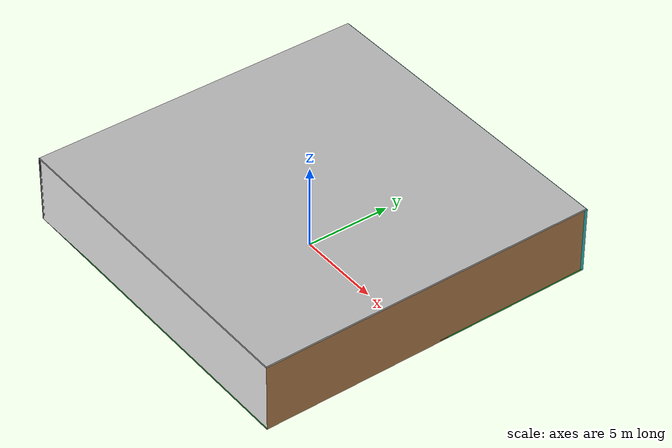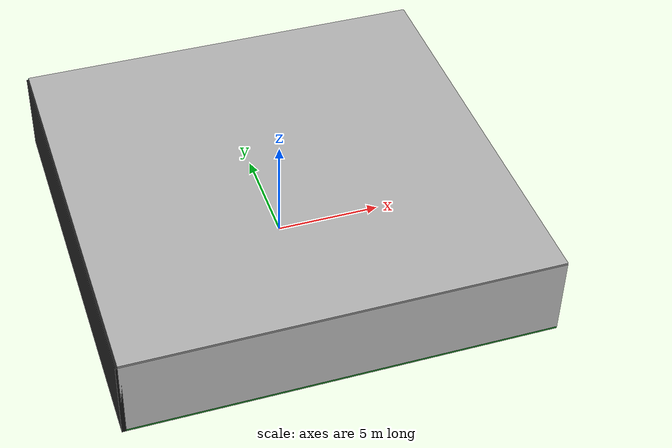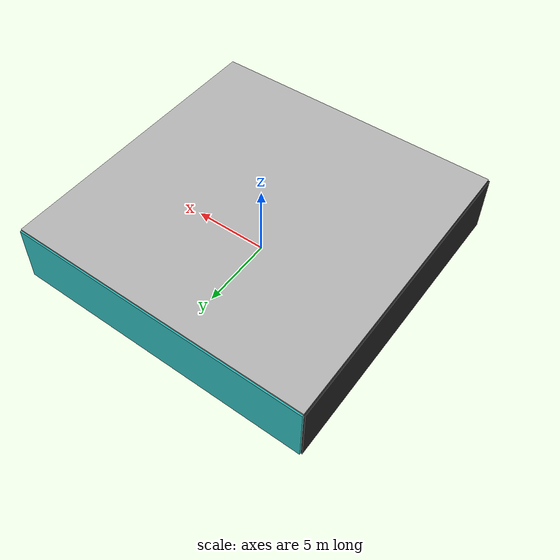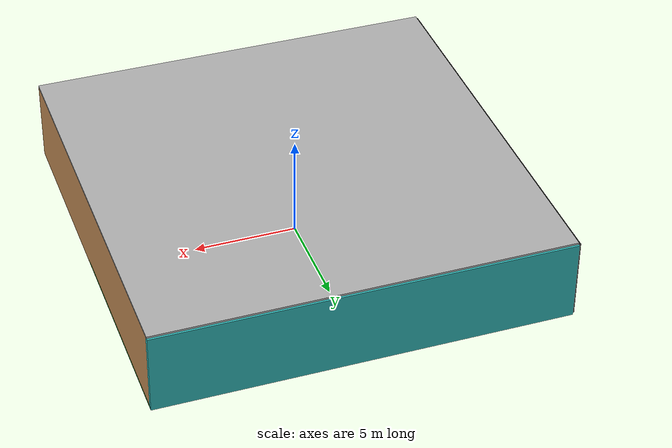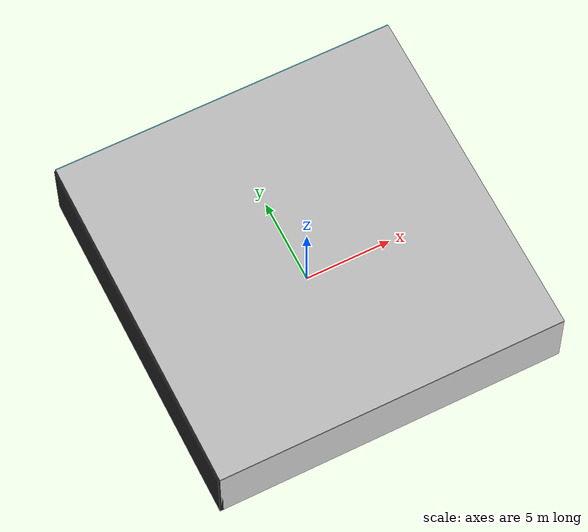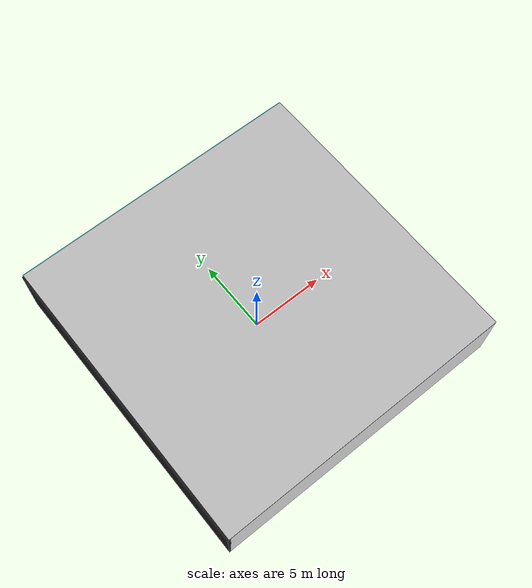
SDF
<sdf version="1.4">
 <world name="default">
  <physics type="ode">
   <max_step_size>0.001</max_step_size>
   <real_time_factor>1</real_time_factor>
   <real_time_update_rate>1000</real_time_update_rate>
   <gravity>0 0 -9.8</gravity>
  </physics>
  <scene><ambient>0.4 0.4 0.4 1</ambient><background>0.7 0.7 0.7 1</background><shadows>1</shadows></scene>
  <model name="Surrounding">
   <static>1</static>
   <link name="Ceiling">
    <collision name="Ceiling_Collision"><geometry><box><size>20 20 0.1</size></box></geometry></collision>
    <visual name="Ceiling_Visual">
     <geometry><box><size>20 20 0.1</size></box></geometry>
     <material>
      <script><uri>file://media/materials/scripts/gazebo.material</uri><name>Gazebo/LightOn</name></script>
     </material>
    </visual>
    <pose>0 0 4.05 0 0 0</pose>
   </link>
   <link name="Wall_South">
    <collision name="Wall_South_Collision">
     <geometry><box><size>20 0 4</size></box></geometry>
     <pose>0 0 2 0 -0 0</pose>
    </collision>
    <visual name="Wall_South_Visual">
     <pose>0 0 2 0 -0 0</pose>
     <geometry><box><size>20 0 4</size></box></geometry>
     <material>
      <script><uri>file://media/materials/scripts/gazebo.material</uri><name>Gazebo/WhiteGlow</name></script>
     </material>
    </visual>
    <velocity_decay><linear>0</linear><angular>0</angular></velocity_decay>
    <pose>0 -10 0 0 -0 0</pose>
   </link>
   <link name="Wall_East">
    <collision name="Wall_21_Collision">
     <geometry><box><size>20 0 4</size></box></geometry>
     <pose>0 0 2 0 -0 0</pose>
    </collision>
    <visual name="Wall_21_Visual">
     <pose>0 0 2 0 -0 0</pose>
     <geometry><box><size>20 0 4</size></box></geometry>
     <material>
      <script><uri>file://media/materials/scripts/gazebo.material</uri><name>Gazebo/Wood</name></script>
     </material>
    </visual>
    <velocity_decay><linear>0</linear><angular>0</angular></velocity_decay>
    <pose>10 0 0 0 -0 1.5708</pose>
   </link>
   <link name="Wall_North">
    <collision name="Wall_22_Collision">
     <geometry><box><size>20 0.2 4</size></box></geometry>
     <pose>0 0 2 0 -0 0</pose>
    </collision>
    <visual name="Wall_22_Visual">
     <pose>0 0 2 0 -0 0</pose>
     <geometry><box><size>20 0.2 4</size></box></geometry>
     <material>
      <script><uri>file://media/materials/scripts/gazebo.material</uri><name>Gazebo/TurquoiseGlow</name></script>
     </material>
    </visual>
    <velocity_decay><linear>0</linear><angular>0</angular></velocity_decay>
    <pose>0 10 0 0 -0 0</pose>
   </link>
   <link name="Wall_West">
    <collision name="Wall_23_Collision">
     <geometry><box><size>20 0.2 4</size></box></geometry>
     <pose>0 0 2 0 -0 0</pose>
    </collision>
    <visual name="Wall_23_Visual">
     <pose>0 0 2 0 -0 0</pose>
     <geometry><box><size>20 0.2 4</size></box></geometry>
     <material>
      <script><uri>file://media/materials/scripts/gazebo.material</uri><name>Gazebo/FlatBlack</name></script>
     </material>
    </visual>
    <velocity_decay><linear>0</linear><angular>0</angular></velocity_decay>
    <pose>-10 0 0 0 0 -1.5708</pose>
   </link>
   <link name="Ground_link">
    <collision name="collision">
     <pose>0 0 .05 0 -0 0</pose>
     <geometry><box><size>20 20 0.1</size></box></geometry>
    </collision>
    <visual name="visual">
     <pose>0 0 .05 0 -0 0</pose>
     <geometry><box><size>20 20 0.1</size></box></geometry>
     <material>
      <script><uri>file://media/materials/scripts/gazebo.material</uri><name>Gazebo/GreenGlow</name></script>
     </material>
    </visual>
   </link>
   <static>1</static>
  </model>
  <spherical_coordinates>
   <surface_model>EARTH_WGS84</surface_model>
   <latitude_deg>0</latitude_deg>
   <longitude_deg>0</longitude_deg>
   <elevation>0</elevation>
   <heading_deg>0</heading_deg>
  </spherical_coordinates>
  <light name="lightball_0" type="diffuse">
   <diffuse>0.8 0.8 0.8 1</diffuse>
   <specular>0.2 0.2 0.2 1</specular>
   <attenuation>
    <range>100</range>
    <constant>0.7</constant>
    <linear>0.01</linear>
    <quadratic>0.001</quadratic>
   </attenuation>
   <direction>-0.5 0.1 -0.9</direction>
   <pose>-6.42295040143 -5.35898013814 0.683195780021 0 0 0</pose>
  </light>
  <light name="lightball_1" type="diffuse">
   <diffuse>0.8 0.8 0.8 1</diffuse>
   <specular>0.2 0.2 0.2 1</specular>
   <attenuation>
    <range>100</range>
    <constant>0.7</constant>
    <linear>0.01</linear>
    <quadratic>0.001</quadratic>
   </attenuation>
   <direction>-0.5 0.1 -0.9</direction>
   <pose>-1.34810612499 -2.27133435796 2.70342850129 0 0 0</pose>
  </light>
  <light name="lightball_2" type="diffuse">
   <diffuse>0.8 0.8 0.8 1</diffuse>
   <specular>0.2 0.2 0.2 1</specular>
   <attenuation>
    <range>100</range>
    <constant>0.7</constant>
    <linear>0.01</linear>
    <quadratic>0.001</quadratic>
   </attenuation>
   <direction>-0.5 0.1 -0.9</direction>
   <pose>8.3295012008 1.39309355864 2.95698025669 0 0 0</pose>
  </light>
  <light name="lightball_3" type="diffuse">
   <diffuse>0.8 0.8 0.8 1</diffuse>
   <specular>0.2 0.2 0.2 1</specular>
   <attenuation>
    <range>100</range>
    <constant>0.7</constant>
    <linear>0.01</linear>
    <quadratic>0.001</quadratic>
   </attenuation>
   <direction>-0.5 0.1 -0.9</direction>
   <pose>4.09614453939 -8.12779685846 2.84062796642 0 0 0</pose>
  </light>
  <light name="lightball_4" type="diffuse">
   <diffuse>0.8 0.8 0.8 1</diffuse>
   <specular>0.2 0.2 0.2 1</specular>
   <attenuation>
    <range>100</range>
    <constant>0.7</constant>
    <linear>0.01</linear>
    <quadratic>0.001</quadratic>
   </attenuation>
   <direction>-0.5 0.1 -0.9</direction>
   <pose>5.24747140153 -8.04674398042 2.91068942732 0 0 0</pose>
  </light>
  <light name="lightball_5" type="diffuse">
   <diffuse>0.8 0.8 0.8 1</diffuse>
   <specular>0.2 0.2 0.2 1</specular>
   <attenuation>
    <range>100</range>
    <constant>0.7</constant>
    <linear>0.01</linear>
    <quadratic>0.001</quadratic>
   </attenuation>
   <direction>-0.5 0.1 -0.9</direction>
   <pose>-9.75985285929 5.40737355944 3.67349096534 0 0 0</pose>
  </light>
  <light name="lightball_6" type="diffuse">
   <diffuse>0.8 0.8 0.8 1</diffuse>
   <specular>0.2 0.2 0.2 1</specular>
   <attenuation>
    <range>100</range>
    <constant>0.7</constant>
    <linear>0.01</linear>
    <quadratic>0.001</quadratic>
   </attenuation>
   <direction>-0.5 0.1 -0.9</direction>
   <pose>-9.29521920335 1.59218799467 3.05371073277 0 0 0</pose>
  </light>
  <light name="lightball_7" type="diffuse">
   <diffuse>0.8 0.8 0.8 1</diffuse>
   <specular>0.2 0.2 0.2 1</specular>
   <attenuation>
    <range>100</range>
    <constant>0.7</constant>
    <linear>0.01</linear>
    <quadratic>0.001</quadratic>
   </attenuation>
   <direction>-0.5 0.1 -0.9</direction>
   <pose>8.518128102 7.44632593984 2.12614754357 0 0 0</pose>
  </light>
  <light name="lightball_8" type="diffuse">
   <diffuse>0.8 0.8 0.8 1</diffuse>
   <specular>0.2 0.2 0.2 1</specular>
   <attenuation>
    <range>100</range>
    <constant>0.7</constant>
    <linear>0.01</linear>
    <quadratic>0.001</quadratic>
   </attenuation>
   <direction>-0.5 0.1 -0.9</direction>
   <pose>-0.250536293535 -0.290225368307 1.69773046647 0 0 0</pose>
  </light>
  <light name="lightball_9" type="diffuse">
   <diffuse>0.8 0.8 0.8 1</diffuse>
   <specular>0.2 0.2 0.2 1</specular>
   <attenuation>
    <range>100</range>
    <constant>0.7</constant>
    <linear>0.01</linear>
    <quadratic>0.001</quadratic>
   </attenuation>
   <direction>-0.5 0.1 -0.9</direction>
   <pose>-3.93348154976 -0.334107149601 3.22061557816 0 0 0</pose>
  </light>
  <light name="lightball_10" type="diffuse">
   <diffuse>0.8 0.8 0.8 1</diffuse>
   <specular>0.2 0.2 0.2 1</specular>
   <attenuation>
    <range>100</range>
    <constant>0.7</constant>
    <linear>0.01</linear>
    <quadratic>0.001</quadratic>
   </attenuation>
   <direction>-0.5 0.1 -0.9</direction>
   <pose>6.87650616835 9.81824415537 2.72212920478 0 0 0</pose>
  </light>
  <light name="lightball_11" type="diffuse">
   <diffuse>0.8 0.8 0.8 1</diffuse>
   <specular>0.2 0.2 0.2 1</specular>
   <attenuation>
    <range>100</range>
    <constant>0.7</constant>
    <linear>0.01</linear>
    <quadratic>0.001</quadratic>
   </attenuation>
   <direction>-0.5 0.1 -0.9</direction>
   <pose>-1.70981600871 -5.0298983783 0.619704234815 0 0 0</pose>
  </light>
  <light name="lightball_12" type="diffuse">
   <diffuse>0.8 0.8 0.8 1</diffuse>
   <specular>0.2 0.2 0.2 1</specular>
   <attenuation>
    <range>100</range>
    <constant>0.7</constant>
    <linear>0.01</linear>
    <quadratic>0.001</quadratic>
   </attenuation>
   <direction>-0.5 0.1 -0.9</direction>
   <pose>3.20627823339 2.76334983613 0.775274445642 0 0 0</pose>
  </light>
  <include>
   <uri>model://textured_shapes</uri>
   <pose>-6.45195695181 -3.90274435222 0 0 0 0.924114771584</pose>
  </include>
  <include><uri>model://cabinet</uri><pose>-2.68247647352 1.69413982062 0 0 0 1.17176604289</pose></include>
  <include><uri>model://table</uri><pose>2.39919915379 -4.95099262922 0 0 0 0.69246635387</pose></include>
  <include>
   <uri>model://robocup_3Dsim_goal</uri>
   <pose>2.09684983971 0.303747687747 0 0 0 1.38100266667</pose>
  </include>
  <include><uri>model://cabinet</uri><pose>1.88317244214 8.69394574547 0 0 0 0.282937122062</pose></include>
  <include>
   <uri>model://construction_cone</uri>
   <pose>6.6512530055 7.48912608425 0 0 0 2.72781972309</pose>
  </include>
 </world>
</sdf>

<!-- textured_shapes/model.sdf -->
<sdf version="1.6">
  <model name="textured_shapes">
    <pose>0 0 0.5 0 0 0</pose>
    <link name="box">
      <pose>0 -1.5 0 0 0 0</pose>
      <collision name="collision">
        <geometry>
          <box>
            <size>1 1 1</size>
          </box>
        </geometry>
      </collision>
      <visual name="visual">
        <geometry>
          <box>
            <size>1 1 1</size>
          </box>
        </geometry>
        <material>
          <script>
            <uri>model://../model_source/models/textured_shapes/materials/scripts</uri>
            <uri>model://../model_source/models/textured_shapes/materials/textures</uri>
            <name>TexturedShape/Squares</name>
          </script>
        </material>
      </visual>
    </link>
    <link name="sphere">
      <collision name="collision">
        <geometry>
          <sphere>
            <radius>0.5</radius>
          </sphere>
        </geometry>
      </collision>
      <visual name="visual">
        <geometry>
          <sphere>
            <radius>0.5</radius>
          </sphere>
        </geometry>
        <material>
          <script>
            <uri>model://../model_source/models/textured_shapes/materials/scripts</uri>
            <uri>model://../model_source/models/textured_shapes/materials/textures</uri>
            <name>TexturedShape/Squares</name>
          </script>
        </material>
      </visual>
    </link>
    <link name="cylinder">
      <pose>0 1.5 0 0 0 0</pose>
      <collision name="collision">
        <geometry>
          <cylinder>
            <radius>0.5</radius>
            <length>1</length>
          </cylinder>
        </geometry>
      </collision>
      <visual name="visual">
        <geometry>
          <cylinder>
            <radius>0.5</radius>
            <length>1</length>
          </cylinder>
        </geometry>
        <material>
          <script>
            <uri>model://../model_source/models/textured_shapes/materials/scripts</uri>
            <uri>model://../model_source/models/textured_shapes/materials/textures</uri>
            <name>TexturedShape/Squares</name>
          </script>
        </material>
      </visual>
    </link>
  </model>
</sdf>

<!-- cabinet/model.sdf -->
<sdf version="1.5">
  <model name="cabinet">
    <static>true</static>
    <link name="cabinet_bottom_plate">
      <inertial>
        <pose>0 0 -1 0 0 0</pose>
        <inertia>
          <ixx>2.050000</ixx>
          <ixy>0</ixy>
          <ixz>0</ixz>
          <iyy>2.050000</iyy>
          <iyz>0</iyz>
          <izz>2.050000</izz>
        </inertia>
        <mass>25.000000</mass>
      </inertial>
      <collision name="cabinet_bottom_plate_geom">
        <pose>0 0 0.010000 0 0 0</pose>
        <geometry>
          <box>
            <size>0.450000 0.450000 0.020000</size>
          </box>
        </geometry>
      </collision>
      <visual name="cabinet_bottom_plate_geom_visual">
        <pose>0 0 0.010000 0 0 0</pose>
        <geometry>
          <box>
            <size>0.450000 0.450000 0.020000</size>
          </box>
        </geometry>
        <material>
          <script>
            <uri>model://media/materials/scripts/gazebo.material</uri>
            <name>Gazebo/Wood</name>
          </script>
        </material>
      </visual>
      <collision name="cabinet_bottom_plate_geom_cabinet_back_plate">
        <pose>0.235000 0 0.510000 0 0 0</pose>
        <geometry>
          <box>
            <size>0.020000 0.450000 1.020000</size>
          </box>
        </geometry>
      </collision>
      <visual name="cabinet_bottom_plate_geom_cabinet_back_plate_visual">
        <pose>0.235000 0 0.510000 0 0 0</pose>
        <geometry>
          <box>
            <size>0.020000 0.450000 1.020000</size>
          </box>
        </geometry>
        <material>
          <script>
            <uri>model://media/materials/scripts/gazebo.material</uri>
            <name>Gazebo/Wood</name>
          </script>
        </material>
      </visual>
      <collision name="cabinet_bottom_plate_geom_cabinet_left_plate">
        <pose>0 0.235000 0.510000 0 0 0</pose>
        <geometry>
          <box>
            <size>0.450000 0.020000 1.020000</size>
          </box>
        </geometry>
      </collision>
      <visual name="cabinet_bottom_plate_geom_cabinet_left_plate_visual">
        <pose>0 0.235000 0.510000 0 0 0</pose>
        <geometry>
          <box>
            <size>0.450000 0.020000 1.020000</size>
          </box>
        </geometry>
        <material>
          <script>
            <uri>model://media/materials/scripts/gazebo.material</uri>
            <name>Gazebo/Wood</name>
          </script>
        </material>
      </visual>
      <collision name="cabinet_bottom_plate_geom_cabinet_middle_plate">
        <pose>0 0 0.510000 0 0 0</pose>
        <geometry>
          <box>
            <size>0.450000 0.450000 0.020000</size>
          </box>
        </geometry>
      </collision>
      <visual name="cabinet_bottom_plate_geom_cabinet_middle_plate_visual">
        <pose>0 0 0.510000 0 0 0</pose>
        <geometry>
          <box>
            <size>0.450000 0.450000 0.020000</size>
          </box>
        </geometry>
        <material>
          <script>
            <uri>model://media/materials/scripts/gazebo.material</uri>
            <name>Gazebo/Wood</name>
          </script>
        </material>
      </visual>
      <collision name="cabinet_bottom_plate_geom_cabinet_right_plate">
        <pose>0 -0.235000 0.510000 0 0 0</pose>
        <geometry>
          <box>
            <size>0.450000 0.020000 1.020000</size>
          </box>
        </geometry>
      </collision>
      <visual name="cabinet_bottom_plate_geom_cabinet_right_plate_visual">
        <pose>0 -0.235000 0.510000 0 0 0</pose>
        <geometry>
          <box>
            <size>0.450000 0.020000 1.020000</size>
          </box>
        </geometry>
        <material>
          <script>
            <uri>model://media/materials/scripts/gazebo.material</uri>
            <name>Gazebo/Wood</name>
          </script>
        </material>
      </visual>
      <collision name="cabinet_bottom_plate_geom_cabinet_top_plate">
        <pose>0 0 1.010000 0 0 0</pose>
        <geometry>
          <box>
            <size>0.450000 0.450000 0.020000</size>
          </box>
        </geometry>
      </collision>
      <visual name="cabinet_bottom_plate_geom_cabinet_top_plate_visual">
        <pose>0 0 1.010000 0 0 0</pose>
        <geometry>
          <box>
            <size>0.450000 0.450000 0.020000</size>
          </box>
        </geometry>
        <material>
          <script>
            <uri>model://media/materials/scripts/gazebo.material</uri>
            <name>Gazebo/Wood</name>
          </script>
        </material>
      </visual>
    </link>
  </model>
</sdf>

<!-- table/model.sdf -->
<sdf version="1.5">
  <model name="table">
    <static>true</static>
    <link name="link">
      <collision name="surface">
        <pose>0 0 1.0 0 0 0</pose>
        <geometry>
          <box>
            <size>1.5 0.8 0.03</size>
          </box>
        </geometry>
        <surface>
          <friction>
            <ode>
              <mu>0.6</mu>
              <mu2>0.6</mu2>
            </ode>
          </friction>
        </surface>
      </collision>
      <visual name="visual1">
        <pose>0 0 1.0 0 0 0</pose>
        <geometry>
          <box>
            <size>1.5 0.8 0.03</size>
          </box>
        </geometry>
        <material>
          <script>
            <uri>model://media/materials/scripts/gazebo.material</uri>
            <name>Gazebo/Wood</name>
          </script>
        </material>
      </visual>
      <collision name="front_left_leg">
        <pose>0.68 0.38 0.5 0 0 0</pose>
        <geometry>
          <cylinder>
            <radius>0.02</radius>
            <length>1.0</length>
          </cylinder>
        </geometry>
      </collision>
      <visual name="front_left_leg">
        <pose>0.68 0.38 0.5 0 0 0</pose>
        <geometry>
          <cylinder>
            <radius>0.02</radius>
            <length>1.0</length>
          </cylinder>
        </geometry>
        <material>
          <script>
            <uri>model://media/materials/scripts/gazebo.material</uri>
            <name>Gazebo/Grey</name>
          </script>
        </material>
      </visual>
      <collision name="front_right_leg">
        <pose>0.68 -0.38 0.5 0 0 0</pose>
        <geometry>
          <cylinder>
            <radius>0.02</radius>
            <length>1.0</length>
          </cylinder>
        </geometry>
      </collision>
      <visual name="front_right_leg">
        <pose>0.68 -0.38 0.5 0 0 0</pose>
        <geometry>
          <cylinder>
            <radius>0.02</radius>
            <length>1.0</length>
          </cylinder>
        </geometry>
        <material>
          <script>
            <uri>model://media/materials/scripts/gazebo.material</uri>
            <name>Gazebo/Grey</name>
          </script>
        </material>
      </visual>
      <collision name="back_right_leg">
        <pose>-0.68 -0.38 0.5 0 0 0</pose>
        <geometry>
          <cylinder>
            <radius>0.02</radius>
            <length>1.0</length>
          </cylinder>
        </geometry>
      </collision>
      <visual name="back_right_leg">
        <pose>-0.68 -0.38 0.5 0 0 0</pose>
        <geometry>
          <cylinder>
            <radius>0.02</radius>
            <length>1.0</length>
          </cylinder>
        </geometry>
        <material>
          <script>
            <uri>model://media/materials/scripts/gazebo.material</uri>
            <name>Gazebo/Grey</name>
          </script>
        </material>
      </visual>
      <collision name="back_left_leg">
        <pose>-0.68 0.38 0.5 0 0 0</pose>
        <geometry>
          <cylinder>
            <radius>0.02</radius>
            <length>1.0</length>
          </cylinder>
        </geometry>
      </collision>
      <visual name="back_left_leg">
        <pose>-0.68 0.38 0.5 0 0 0</pose>
        <geometry>
          <cylinder>
            <radius>0.02</radius>
            <length>1.0</length>
          </cylinder>
        </geometry>
        <material>
          <script>
            <uri>model://media/materials/scripts/gazebo.material</uri>
            <name>Gazebo/Grey</name>
          </script>
        </material>
      </visual>
    </link>
  </model>
</sdf>

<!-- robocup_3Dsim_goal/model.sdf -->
<sdf version="1.5">
  <model name="robocup_3d_goal">
    <static>true</static>
    <link name="left_post">
      <pose>0 1.05 0.45 0 0 0</pose>
      <collision name="collision">
        <geometry>
          <cylinder>
            <radius>0.05</radius>
            <length>0.9</length>
          </cylinder>
        </geometry>
      </collision>
      <visual name="visual">
        <geometry>
          <cylinder>
            <radius>0.05</radius>
            <length>0.9</length>
          </cylinder>
        </geometry>
        <material>
          <script>
            <uri>file://media/materials/scripts/gazebo.material</uri>
            <name>Gazebo/ZincYellow</name>
          </script>
        </material>
      </visual>
    </link>
    <link name="left_support_horiz_lower">
      <pose>0.30 1.05 0.01 0 0 0</pose>
      <collision name="collision">
        <geometry>
          <box>
            <size>0.50 0.02 0.02</size>
          </box>
        </geometry>
      </collision>
      <visual name="visual">
        <geometry>
          <box>
            <size>0.50 0.02 0.02</size>
          </box>
        </geometry>
        <material>
          <script>
            <uri>file://media/materials/scripts/gazebo.material</uri>
            <name>Gazebo/White</name>
          </script>
        </material>
      </visual>
    </link>
    <link name="left_support_horiz_upper">
      <pose>0.30 1.05 0.79 0 0 0</pose>
      <collision name="collision">
        <geometry>
          <box>
            <size>0.50 0.02 0.02</size>
          </box>
        </geometry>
      </collision>
      <visual name="visual">
        <geometry>
          <box>
            <size>0.50 0.02 0.02</size>
          </box>
        </geometry>
        <material>
          <script>
            <uri>file://media/materials/scripts/gazebo.material</uri>
            <name>Gazebo/White</name>
          </script>
        </material>
      </visual>
    </link>
    <link name="left_support_vertical">
      <pose>0.56 1.05 0.4 0 1.5708 0</pose>
      <collision name="collision">
        <geometry>
          <box>
            <size>0.80 0.02 0.02</size>
          </box>
        </geometry>
      </collision>
      <visual name="visual">
        <geometry>
          <box>
            <size>0.80 0.02 0.02</size>
          </box>
        </geometry>
        <material>
          <script>
            <uri>file://media/materials/scripts/gazebo.material</uri>
            <name>Gazebo/White</name>
          </script>
        </material>
      </visual>
    </link>
    <link name="right_support_horiz_lower">
      <pose>0.30 -1.05 0.01 0 0 0</pose>
      <collision name="collision">
        <geometry>
          <box>
            <size>0.50 0.02 0.02</size>
          </box>
        </geometry>
      </collision>
      <visual name="visual">
        <geometry>
          <box>
            <size>0.50 0.02 0.02</size>
          </box>
        </geometry>
        <material>
          <script>
            <uri>file://media/materials/scripts/gazebo.material</uri>
            <name>Gazebo/White</name>
          </script>
        </material>
      </visual>
    </link>
    <link name="right_support_horiz_upper">
      <pose>0.30 -1.05 0.79 0 0 0</pose>
      <collision name="collision">
        <geometry>
          <box>
            <size>0.50 0.02 0.02</size>
          </box>
        </geometry>
      </collision>
      <visual name="visual">
        <geometry>
          <box>
            <size>0.50 0.02 0.02</size>
          </box>
        </geometry>
        <material>
          <script>
            <uri>file://media/materials/scripts/gazebo.material</uri>
            <name>Gazebo/White</name>
          </script>
        </material>
      </visual>
    </link>
    <link name="right_support_vertical">
      <pose>0.56 -1.05 0.4 0 1.5708 0</pose>
      <collision name="collision">
        <geometry>
          <box>
            <size>0.80 0.02 0.02</size>
          </box>
        </geometry>
      </collision>
      <visual name="visual">
        <geometry>
          <box>
            <size>0.80 0.02 0.02</size>
          </box>
        </geometry>
        <material>
          <script>
            <uri>file://media/materials/scripts/gazebo.material</uri>
            <name>Gazebo/White</name>
          </script>
        </material>
      </visual>
    </link>
    <link name="center_support_horiz_lower">
      <pose>0.56 0 0.01 0 1.5708 0</pose>
      <collision name="collision">
        <geometry>
          <box>
            <size>0.02 2.08 0.02</size>
          </box>
        </geometry>
      </collision>
      <visual name="visual">
        <geometry>
          <box>
            <size>0.02 2.08 0.02</size>
          </box>
        </geometry>
        <material>
          <script>
            <uri>file://media/materials/scripts/gazebo.material</uri>
            <name>Gazebo/White</name>
          </script>
        </material>
      </visual>
    </link>
    <link name="center_support_horiz_upper">
      <pose>0.56 0 0.79 0 1.5708 0</pose>
      <collision name="collision">
        <geometry>
          <box>
            <size>0.02 2.08 0.02</size>
          </box>
        </geometry>
      </collision>
      <visual name="visual">
        <geometry>
          <box>
            <size>0.02 2.08 0.02</size>
          </box>
        </geometry>
        <material>
          <script>
            <uri>file://media/materials/scripts/gazebo.material</uri>
            <name>Gazebo/White</name>
          </script>
        </material>
      </visual>
    </link>
    <link name="right_post">
      <pose>0 -1.05 0.45 0 0 0</pose>
      <collision name="collision">
        <geometry>
          <cylinder>
            <radius>0.05</radius>
            <length>0.9</length>
          </cylinder>
        </geometry>
      </collision>
      <visual name="visual">
        <geometry>
          <cylinder>
            <radius>0.05</radius>
            <length>0.9</length>
          </cylinder>
        </geometry>
        <material>
          <script>
            <uri>file://media/materials/scripts/gazebo.material</uri>
            <name>Gazebo/ZincYellow</name>
          </script>
        </material>
      </visual>
    </link>
    <link name="crossbar">
      <pose>0 0 0.85 1.57 1.57 0</pose>
      <collision name="collision">
        <geometry>
          <cylinder>
            <radius>0.05</radius>
            <length>2.0</length>
          </cylinder>
        </geometry>
      </collision>
      <visual name="visual">
        <geometry>
          <cylinder>
            <radius>0.05</radius>
            <length>2.0</length>
          </cylinder>
        </geometry>
        <material>
          <script>
            <uri>file://media/materials/scripts/gazebo.material</uri>
            <name>Gazebo/ZincYellow</name>
          </script>
        </material>
      </visual>
    </link>
    <link name="center_net">
      <pose>0.56 0 0.40 0 0 0</pose>
      <collision name="collision">
        <geometry>
          <box>
            <size>0.01 2.1 0.80</size>
          </box>
        </geometry>
      </collision>
      <visual name="visual">
        <geometry>
          <box>
            <size>0.01 2.1 0.80</size>
          </box>
        </geometry>
        <material>
          <script>
            <uri>model://../model_source/models/robocup09_spl_field/materials/scripts/</uri>
            <uri>model://../model_source/models/robocup09_spl_field/materials/textures/</uri>
            <name>RoboCup/Net</name>
          </script>
        </material>
      </visual>
    </link>
    <link name="left_net">
      <pose>0.30 1.05 0.40 0 0 0</pose>
      <collision name="collision">
        <geometry>
          <box>
            <size>0.50 0.01 0.76</size>
          </box>
        </geometry>
      </collision>
      <visual name="visual">
        <geometry>
          <box>
            <size>0.50 0.01 0.76</size>
          </box>
        </geometry>
        <material>
          <script>
            <uri>model://../model_source/models/robocup09_spl_field/materials/scripts/</uri>
            <uri>model://../model_source/models/robocup09_spl_field/materials/textures/</uri>
            <name>RoboCup/Net</name>
          </script>
        </material>
      </visual>
    </link>
    <link name="right_net">
      <pose>0.30 -1.05 0.40 0 0 0</pose>
      <collision name="collision">
        <geometry>
          <box>
            <size>0.50 0.01 0.76</size>
          </box>
        </geometry>
      </collision>
      <visual name="visual">
        <geometry>
          <box>
            <size>0.50 0.01 0.76</size>
          </box>
        </geometry>
        <material>
          <script>
            <uri>model://../model_source/models/robocup09_spl_field/materials/scripts/</uri>
            <uri>model://../model_source/models/robocup09_spl_field/materials/textures/</uri>
            <name>RoboCup/Net</name>
          </script>
        </material>
      </visual>
    </link>
  </model>
</sdf>

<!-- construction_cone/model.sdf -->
<sdf version="1.5">
  <model name="Construction Cone">
    <link name="link">
      <collision name="collision">
        <geometry>
          <mesh>
            <scale>10 10 10</scale>
            <uri>file://isr-testbed/construction_cone/meshes/construction_cone.dae</uri>
          </mesh>
        </geometry>
      </collision>
      <visual name="visual">
        <geometry>
          <mesh>
            <scale>10 10 10</scale>
            <uri>file://isr-testbed/construction_cone/meshes/construction_cone.dae</uri>
          </mesh>
        </geometry>
      </visual>
    </link>
  </model>
</sdf>
